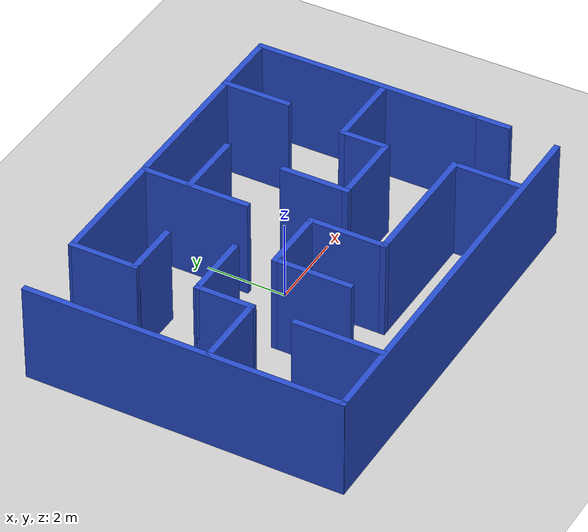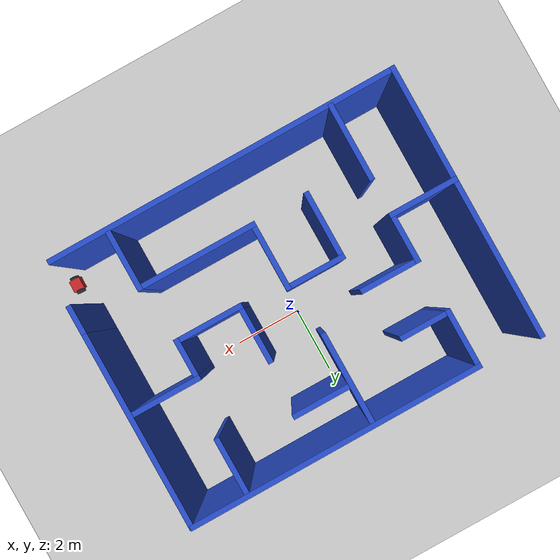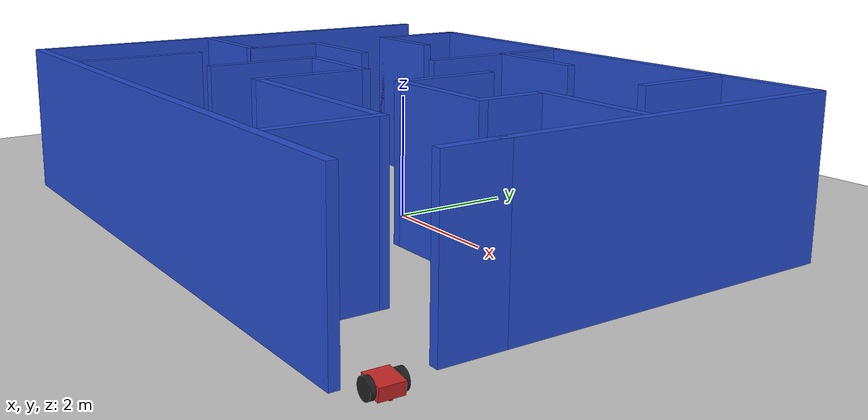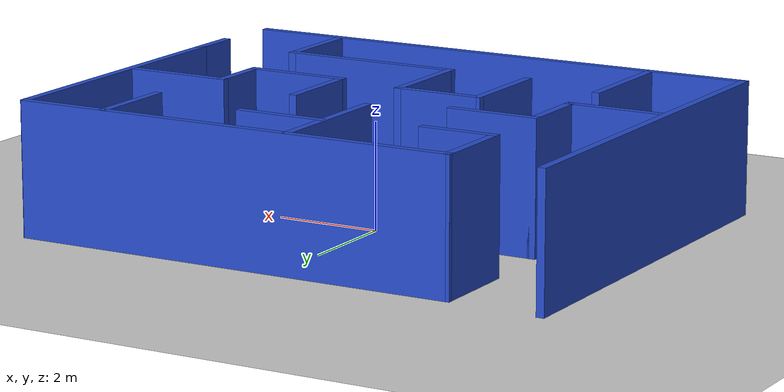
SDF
<sdf version="1.7">
 <world name="default">
  <light name="sun" type="directional">
   <pose>0 0 10 0 -0 0</pose>
   <diffuse>0.8 0.8 0.8 1</diffuse>
   <specular>0.2 0.2 0.2 1</specular>
   <attenuation>
    <range>1000</range>
    <constant>0.9</constant>
    <linear>0.01</linear>
    <quadratic>0.001</quadratic>
   </attenuation>
   <direction>-0.5 0.1 -0.9</direction>
   <spot><inner_angle>0</inner_angle><outer_angle>0</outer_angle><falloff>0</falloff></spot>
  </light>
  <model name="ground_plane">
   <static>1</static>
   <link name="link">
    <collision name="collision">
     <geometry><plane><normal>0 0 1</normal><size>100 100</size></plane></geometry>
     <surface>
      <contact><collide_bitmask>65535</collide_bitmask></contact>
      <friction><ode><mu>100</mu><mu2>50</mu2></ode></friction>
     </surface>
    </collision>
    <visual name="visual">
     <cast_shadows>0</cast_shadows>
     <geometry><plane><normal>0 0 1</normal><size>100 100</size></plane></geometry>
     <material>
      <script><uri>file://media/materials/scripts/gazebo.material</uri><name>Gazebo/Grey</name></script>
     </material>
    </visual>
   </link>
  </model>
  <gravity>0 0 -9.8</gravity>
  <magnetic_field>6e-06 2.3e-05 -4.2e-05</magnetic_field>
  <atmosphere type="adiabatic"/>
  <physics type="ode">
   <max_step_size>0.001</max_step_size>
   <real_time_factor>1</real_time_factor>
   <real_time_update_rate>1000</real_time_update_rate>
  </physics>
  <scene><ambient>0.4 0.4 0.4 1</ambient><background>0.7 0.7 0.7 1</background><shadows>0</shadows></scene>
  <spherical_coordinates>
   <surface_model>EARTH_WGS84</surface_model>
   <latitude_deg>0</latitude_deg>
   <longitude_deg>0</longitude_deg>
   <elevation>0</elevation>
   <heading_deg>0</heading_deg>
  </spherical_coordinates>
  <model name="maze1">
   <pose>-0.03824 -0.388117 0 0 -0 0</pose>
   <link name="Wall_10">
    <collision name="Wall_10_Collision">
     <geometry><box><size>8.60392 0.15 2.5</size></box></geometry>
     <pose>0 0 1.25 0 -0 0</pose>
    </collision>
    <visual name="Wall_10_Visual">
     <pose>0 0 1.25 0 -0 0</pose>
     <geometry><box><size>8.60392 0.15 2.5</size></box></geometry>
     <material>
      <script><uri>file://media/materials/scripts/gazebo.material</uri><name>Gazebo/Blue</name></script>
      <ambient>0 0 0 1</ambient>
     </material>
     <meta><layer>0</layer></meta>
    </visual>
    <pose>0.88793 3.86419 0 0 -0 -3.13769</pose>
   </link>
   <link name="Wall_14">
    <collision name="Wall_14_Collision">
     <geometry><box><size>5.75 0.15 2.5</size></box></geometry>
     <pose>0 0 1.25 0 -0 0</pose>
    </collision>
    <visual name="Wall_14_Visual">
     <pose>0 0 1.25 0 -0 0</pose>
     <geometry><box><size>5.75 0.15 2.5</size></box></geometry>
     <material>
      <script><uri>file://media/materials/scripts/gazebo.material</uri><name>Gazebo/Blue</name></script>
      <ambient>0 0 0 1</ambient>
     </material>
     <meta><layer>0</layer></meta>
    </visual>
    <pose>5.14103 1.05452 0 0 -0 -1.5708</pose>
   </link>
   <link name="Wall_16">
    <collision name="Wall_16_Collision">
     <geometry><box><size>1.75 0.15 2.5</size></box></geometry>
     <pose>0 0 1.25 0 -0 0</pose>
    </collision>
    <visual name="Wall_16_Visual">
     <pose>0 0 1.25 0 -0 0</pose>
     <geometry><box><size>1.75 0.15 2.5</size></box></geometry>
     <material>
      <script><uri>file://media/materials/scripts/gazebo.material</uri><name>Gazebo/Blue</name></script>
      <ambient>0 0 0 1</ambient>
     </material>
     <meta><layer>0</layer></meta>
    </visual>
    <pose>-3.339 3.04769 0 0 -0 -1.5708</pose>
   </link>
   <link name="Wall_17">
    <collision name="Wall_17_Collision">
     <geometry><box><size>1.5 0.15 2.5</size></box></geometry>
     <pose>0 0 1.25 0 -0 0</pose>
    </collision>
    <visual name="Wall_17_Visual">
     <pose>0 0 1.25 0 -0 0</pose>
     <geometry><box><size>1.5 0.15 2.5</size></box></geometry>
     <material>
      <script><uri>file://media/materials/scripts/gazebo.material</uri><name>Gazebo/Blue</name></script>
      <ambient>0 0 0 1</ambient>
     </material>
     <meta><layer>0</layer></meta>
    </visual>
    <pose>-2.664 2.24769 0 0 -0 0</pose>
   </link>
   <link name="Wall_19">
    <collision name="Wall_19_Collision">
     <geometry><box><size>2.25 0.15 2.5</size></box></geometry>
     <pose>0 0 1.25 0 -0 0</pose>
    </collision>
    <visual name="Wall_19_Visual">
     <pose>0 0 1.25 0 -0 0</pose>
     <geometry><box><size>2.25 0.15 2.5</size></box></geometry>
     <material>
      <script><uri>file://media/materials/scripts/gazebo.material</uri><name>Gazebo/Blue</name></script>
      <ambient>0 0 0 1</ambient>
     </material>
     <meta><layer>0</layer></meta>
    </visual>
    <pose>-3.27785 -2.80066 0 0 -0 1.5708</pose>
   </link>
   <link name="Wall_21">
    <collision name="Wall_21_Collision">
     <geometry><box><size>2 0.15 2.5</size></box></geometry>
     <pose>0 0 1.25 0 -0 0</pose>
    </collision>
    <visual name="Wall_21_Visual">
     <pose>0 0 1.25 0 -0 0</pose>
     <geometry><box><size>2 0.15 2.5</size></box></geometry>
     <material>
      <script><uri>file://media/materials/scripts/gazebo.material</uri><name>Gazebo/Blue</name></script>
      <ambient>0 0 0 1</ambient>
     </material>
     <meta><layer>0</layer></meta>
    </visual>
    <pose>-4.21089 -0.657958 0 0 -0 0</pose>
   </link>
   <link name="Wall_22">
    <collision name="Wall_22_Collision">
     <geometry><box><size>1.5 0.15 2.5</size></box></geometry>
     <pose>0 0 1.25 0 -0 0</pose>
    </collision>
    <visual name="Wall_22_Visual">
     <pose>0 0 1.25 0 -0 0</pose>
     <geometry><box><size>1.5 0.15 2.5</size></box></geometry>
     <material>
      <script><uri>file://media/materials/scripts/gazebo.material</uri><name>Gazebo/Blue</name></script>
      <ambient>0 0 0 1</ambient>
     </material>
     <meta><layer>0</layer></meta>
    </visual>
    <pose>-3.28589 0.017042 0 0 -0 1.5708</pose>
   </link>
   <link name="Wall_23">
    <collision name="Wall_23_Collision">
     <geometry><box><size>1.75 0.15 2.5</size></box></geometry>
     <pose>0 0 1.25 0 -0 0</pose>
    </collision>
    <visual name="Wall_23_Visual">
     <pose>0 0 1.25 0 -0 0</pose>
     <geometry><box><size>1.75 0.15 2.5</size></box></geometry>
     <material>
      <script><uri>file://media/materials/scripts/gazebo.material</uri><name>Gazebo/Blue</name></script>
      <ambient>0 0 0 1</ambient>
     </material>
     <meta><layer>0</layer></meta>
    </visual>
    <pose>-2.48589 0.692042 0 0 -0 0</pose>
   </link>
   <link name="Wall_25">
    <collision name="Wall_25_Collision">
     <geometry><box><size>1.75 0.15 2.5</size></box></geometry>
     <pose>0 0 1.25 0 -0 0</pose>
    </collision>
    <visual name="Wall_25_Visual">
     <pose>0 0 1.25 0 -0 0</pose>
     <geometry><box><size>1.75 0.15 2.5</size></box></geometry>
     <material>
      <script><uri>file://media/materials/scripts/gazebo.material</uri><name>Gazebo/Blue</name></script>
      <ambient>0 0 0 1</ambient>
     </material>
     <meta><layer>0</layer></meta>
    </visual>
    <pose>3.31692 -2.97215 0 0 -0 1.5708</pose>
   </link>
   <link name="Wall_26">
    <collision name="Wall_26_Collision">
     <geometry><box><size>3.5 0.15 2.5</size></box></geometry>
     <pose>0 0 1.25 0 -0 0</pose>
    </collision>
    <visual name="Wall_26_Visual">
     <pose>0 0 1.25 0 -0 0</pose>
     <geometry><box><size>3.5 0.15 2.5</size></box></geometry>
     <material>
      <script><uri>file://media/materials/scripts/gazebo.material</uri><name>Gazebo/Blue</name></script>
      <ambient>0 0 0 1</ambient>
     </material>
     <meta><layer>0</layer></meta>
    </visual>
    <pose>1.64192 -2.17215 0 0 -0 3.14159</pose>
   </link>
   <link name="Wall_27">
    <collision name="Wall_27_Collision">
     <geometry><box><size>2 0.15 2.5</size></box></geometry>
     <pose>0 0 1.25 0 -0 0</pose>
    </collision>
    <visual name="Wall_27_Visual">
     <pose>0 0 1.25 0 -0 0</pose>
     <geometry><box><size>2 0.15 2.5</size></box></geometry>
     <material>
      <script><uri>file://media/materials/scripts/gazebo.material</uri><name>Gazebo/Blue</name></script>
      <ambient>0 0 0 1</ambient>
     </material>
     <meta><layer>0</layer></meta>
    </visual>
    <pose>-0.033081 -1.24715 0 0 -0 1.5708</pose>
   </link>
   <link name="Wall_28">
    <collision name="Wall_28_Collision">
     <geometry><box><size>1.75 0.15 2.5</size></box></geometry>
     <pose>0 0 1.25 0 -0 0</pose>
    </collision>
    <visual name="Wall_28_Visual">
     <pose>0 0 1.25 0 -0 0</pose>
     <geometry><box><size>1.75 0.15 2.5</size></box></geometry>
     <material>
      <script><uri>file://media/materials/scripts/gazebo.material</uri><name>Gazebo/Blue</name></script>
      <ambient>0 0 0 1</ambient>
     </material>
     <meta><layer>0</layer></meta>
    </visual>
    <pose>-0.833081 -0.322153 0 0 -0 3.14159</pose>
   </link>
   <link name="Wall_29">
    <collision name="Wall_29_Collision">
     <geometry><box><size>2 0.15 2.5</size></box></geometry>
     <pose>0 0 1.25 0 -0 0</pose>
    </collision>
    <visual name="Wall_29_Visual">
     <pose>0 0 1.25 0 -0 0</pose>
     <geometry><box><size>2 0.15 2.5</size></box></geometry>
     <material>
      <script><uri>file://media/materials/scripts/gazebo.material</uri><name>Gazebo/Blue</name></script>
      <ambient>0 0 0 1</ambient>
     </material>
     <meta><layer>0</layer></meta>
    </visual>
    <pose>-1.63308 -1.24715 0 0 -0 -1.5708</pose>
   </link>
   <link name="Wall_31">
    <collision name="Wall_31_Collision">
     <geometry><box><size>1 0.15 2.5</size></box></geometry>
     <pose>0 0 1.25 0 -0 0</pose>
    </collision>
    <visual name="Wall_31_Visual">
     <pose>0 0 1.25 0 -0 0</pose>
     <geometry><box><size>1 0.15 2.5</size></box></geometry>
     <material>
      <script><uri>file://media/materials/scripts/gazebo.material</uri><name>Gazebo/Blue</name></script>
      <ambient>0 0 0 1</ambient>
     </material>
     <meta><layer>0</layer></meta>
    </visual>
    <pose>5.14103 -2.17048 0 0 -0 -1.5708</pose>
   </link>
   <link name="Wall_33">
    <collision name="Wall_33_Collision">
     <geometry><box><size>2.75 0.15 2.5</size></box></geometry>
     <pose>0 0 1.25 0 -0 0</pose>
    </collision>
    <visual name="Wall_33_Visual">
     <pose>0 0 1.25 0 -0 0</pose>
     <geometry><box><size>2.75 0.15 2.5</size></box></geometry>
     <material>
      <script><uri>file://media/materials/scripts/gazebo.material</uri><name>Gazebo/Blue</name></script>
      <ambient>0 0 0 1</ambient>
     </material>
     <meta><layer>0</layer></meta>
    </visual>
    <pose>-0.24216 2.51706 0 0 -0 -1.5708</pose>
   </link>
   <link name="Wall_35">
    <collision name="Wall_35_Collision">
     <geometry><box><size>1.75 0.15 2.5</size></box></geometry>
     <pose>0 0 1.25 0 -0 0</pose>
    </collision>
    <visual name="Wall_35_Visual">
     <pose>0 0 1.25 0 -0 0</pose>
     <geometry><box><size>1.75 0.15 2.5</size></box></geometry>
     <material>
      <script><uri>file://media/materials/scripts/gazebo.material</uri><name>Gazebo/Blue</name></script>
      <ambient>0 0 0 1</ambient>
     </material>
     <meta><layer>0</layer></meta>
    </visual>
    <pose>0.610179 2.66559 0 0 -0 0</pose>
   </link>
   <link name="Wall_37">
    <collision name="Wall_37_Collision">
     <geometry><box><size>1.75 0.15 2.5</size></box></geometry>
     <pose>0 0 1.25 0 -0 0</pose>
    </collision>
    <visual name="Wall_37_Visual">
     <pose>0 0 1.25 0 -0 0</pose>
     <geometry><box><size>1.75 0.15 2.5</size></box></geometry>
     <material>
      <script><uri>file://media/materials/scripts/gazebo.material</uri><name>Gazebo/Blue</name></script>
      <ambient>0 0 0 1</ambient>
     </material>
     <meta><layer>0</layer></meta>
    </visual>
    <pose>3.47394 3.04323 0 0 -0 -1.5708</pose>
   </link>
   <link name="Wall_39">
    <collision name="Wall_39_Collision">
     <geometry><box><size>2 0.15 2.5</size></box></geometry>
     <pose>0 0 1.25 0 -0 0</pose>
    </collision>
    <visual name="Wall_39_Visual">
     <pose>0 0 1.25 0 -0 0</pose>
     <geometry><box><size>2 0.15 2.5</size></box></geometry>
     <material>
      <script><uri>file://media/materials/scripts/gazebo.material</uri><name>Gazebo/Blue</name></script>
      <ambient>0 0 0 1</ambient>
     </material>
     <meta><layer>0</layer></meta>
    </visual>
    <pose>4.06678 0.598188 0 0 -0 3.14159</pose>
   </link>
   <link name="Wall_40">
    <collision name="Wall_40_Collision">
     <geometry><box><size>1.25 0.15 2.5</size></box></geometry>
     <pose>0 0 1.25 0 -0 0</pose>
    </collision>
    <visual name="Wall_40_Visual">
     <pose>0 0 1.25 0 -0 0</pose>
     <geometry><box><size>1.25 0.15 2.5</size></box></geometry>
     <material>
      <script><uri>file://media/materials/scripts/gazebo.material</uri><name>Gazebo/Blue</name></script>
      <ambient>0 0 0 1</ambient>
     </material>
     <meta><layer>0</layer></meta>
    </visual>
    <pose>3.14178 0.048188 0 0 -0 -1.5708</pose>
   </link>
   <link name="Wall_41">
    <collision name="Wall_41_Collision">
     <geometry><box><size>2 0.15 2.5</size></box></geometry>
     <pose>0 0 1.25 0 -0 0</pose>
    </collision>
    <visual name="Wall_41_Visual">
     <pose>0 0 1.25 0 -0 0</pose>
     <geometry><box><size>2 0.15 2.5</size></box></geometry>
     <material>
      <script><uri>file://media/materials/scripts/gazebo.material</uri><name>Gazebo/Blue</name></script>
      <ambient>0 0 0 1</ambient>
     </material>
     <meta><layer>0</layer></meta>
    </visual>
    <pose>2.21678 -0.501812 0 0 -0 3.14159</pose>
   </link>
   <link name="Wall_42">
    <collision name="Wall_42_Collision">
     <geometry><box><size>1.75 0.15 2.5</size></box></geometry>
     <pose>0 0 1.25 0 -0 0</pose>
    </collision>
    <visual name="Wall_42_Visual">
     <pose>0 0 1.25 0 -0 0</pose>
     <geometry><box><size>1.75 0.15 2.5</size></box></geometry>
     <material>
      <script><uri>file://media/materials/scripts/gazebo.material</uri><name>Gazebo/Blue</name></script>
      <ambient>0 0 0 1</ambient>
     </material>
     <meta><layer>0</layer></meta>
    </visual>
    <pose>1.29178 0.298188 0 0 -0 1.5708</pose>
   </link>
   <link name="Wall_6">
    <collision name="Wall_6_Collision">
     <geometry><box><size>8 0.15 2.5</size></box></geometry>
     <pose>0 0 1.25 0 -0 0</pose>
    </collision>
    <visual name="Wall_6_Visual">
     <pose>0 0 1.25 0 -0 0</pose>
     <geometry><box><size>8 0.15 2.5</size></box></geometry>
     <material>
      <script><uri>file://media/materials/scripts/gazebo.material</uri><name>Gazebo/Blue</name></script>
      <ambient>0 0 0 1</ambient>
     </material>
     <meta><layer>0</layer></meta>
    </visual>
    <pose>-5.14103 0.002517 0 0 -0 1.5708</pose>
   </link>
   <link name="Wall_8">
    <collision name="Wall_8_Collision">
     <geometry><box><size>10.2728 0.15 2.5</size></box></geometry>
     <pose>0 0 1.25 0 -0 0</pose>
    </collision>
    <visual name="Wall_8_Visual">
     <pose>0 0 1.25 0 -0 0</pose>
     <geometry><box><size>10.2728 0.15 2.5</size></box></geometry>
     <material>
      <script><uri>file://media/materials/scripts/gazebo.material</uri><name>Gazebo/Blue</name></script>
      <ambient>0 0 0 1</ambient>
     </material>
     <meta><layer>0</layer></meta>
    </visual>
    <pose>-0.075855 -3.91078 0 0 -0 -3.13833</pose>
   </link>
   <static>1</static>
  </model>
  <model name="camera2">
   <link name="camera_link">
    <inertial>
     <mass>1e-05</mass>
     <inertia><ixx>1e-05</ixx><ixy>0</ixy><ixz>0</ixz><iyy>1e-05</iyy><iyz>0</iyz><izz>1e-05</izz></inertia>
    </inertial>
    <sensor name="overhead_camera_sensor" type="camera">
     <always_on>1</always_on>
     <update_rate>30</update_rate>
     <visualize>1</visualize>
     <camera>
      <horizontal_fov>1.39626</horizontal_fov>
      <image><width>640</width><height>480</height><format>R8G8B8</format></image>
      <clip><near>0.1</near><far>100</far></clip>
     </camera>
     <plugin name="camera_controller" filename="libgazebo_ros_camera.so">
      <ros><namespace>/camera</namespace></ros>
      <camera_name>overhead_camera</camera_name>
      <frame_name>camera_link</frame_name>
      <image_topic_name>image_raw</image_topic_name>
      <info_topic_name>camera_info</info_topic_name>
     </plugin>
    </sensor>
   </link>
   <static>1</static>
   <pose>0.028527 5.9e-05 18.2359 1.56055 1.56055 3.14159</pose>
  </model>
  <model name="bot">
   <link name="base_link">
    <inertial>
     <pose>0.0175 0 -0.010938 0 -0 0</pose>
     <mass>2.8</mass>
     <inertia>
      <ixx>0.0654147</ixx>
      <ixy>0</ixy>
      <ixz>0.00375156</ixz>
      <iyy>0.111317</iyy>
      <iyz>0</iyz>
      <izz>0.0690725</izz>
     </inertia>
    </inertial>
    <collision name="base_link_collision"><geometry><box><size>0.35 0.35 0.175</size></box></geometry></collision>
    <collision name="base_link_fixed_joint_lump__caster_collision_1">
     <pose>0.14 0 -0.0875 0 -0 0</pose>
     <geometry><sphere><radius>0.035</radius></sphere></geometry>
    </collision>
    <visual name="base_link_visual">
     <geometry><box><size>0.35 0.35 0.175</size></box></geometry>
     <material>
      <script><name>Gazebo/Red</name><uri>file://media/materials/scripts/gazebo.material</uri></script>
     </material>
    </visual>
    <visual name="base_link_fixed_joint_lump__caster_visual_1">
     <pose>0.14 0 -0.0875 0 -0 0</pose>
     <geometry><sphere><radius>0.035</radius></sphere></geometry>
     <material>
      <script><name>Gazebo/Red</name><uri>file://media/materials/scripts/gazebo.material</uri></script>
     </material>
    </visual>
   </link>
   <joint name="joint_left_wheel" type="revolute">
    <pose relative_to="base_link">0 0.21 0 0 -0 0</pose>
    <parent>base_link</parent>
    <child>left_wheel</child>
    <axis>
     <xyz>0 1 0</xyz>
     <limit><lower>-1e+16</lower><upper>1e+16</upper></limit>
     <dynamics><spring_reference>0</spring_reference><spring_stiffness>0</spring_stiffness></dynamics>
    </axis>
   </joint>
   <link name="left_wheel">
    <pose relative_to="joint_left_wheel">0 0 0 0 -0 0</pose>
    <inertial>
     <mass>0.35</mass>
     <inertia><ixx>0.0049</ixx><ixy>0</ixy><ixz>0</ixz><iyy>0.00245</iyy><iyz>0</iyz><izz>0.00245</izz></inertia>
    </inertial>
    <collision name="left_wheel_collision">
     <pose>0 0 0 1.57079 -0 0</pose>
     <geometry><cylinder><length>0.07</length><radius>0.14</radius></cylinder></geometry>
    </collision>
    <visual name="left_wheel_visual">
     <pose>0 0 0 1.57079 -0 0</pose>
     <geometry><cylinder><length>0.07</length><radius>0.14</radius></cylinder></geometry>
     <material>
      <script><name>Gazebo/Black</name><uri>file://media/materials/scripts/gazebo.material</uri></script>
     </material>
    </visual>
   </link>
   <joint name="joint_right_wheel" type="revolute">
    <pose relative_to="base_link">0 -0.21 0 0 -0 0</pose>
    <parent>base_link</parent>
    <child>right_wheel</child>
    <axis>
     <xyz>0 1 0</xyz>
     <limit><lower>-1e+16</lower><upper>1e+16</upper></limit>
     <dynamics><spring_reference>0</spring_reference><spring_stiffness>0</spring_stiffness></dynamics>
    </axis>
   </joint>
   <link name="right_wheel">
    <pose relative_to="joint_right_wheel">0 0 0 0 -0 0</pose>
    <inertial>
     <mass>0.35</mass>
     <inertia><ixx>0.0049</ixx><ixy>0</ixy><ixz>0</ixz><iyy>0.00245</iyy><iyz>0</iyz><izz>0.00245</izz></inertia>
    </inertial>
    <collision name="right_wheel_collision">
     <pose>0 0 0 1.57079 -0 0</pose>
     <geometry><cylinder><length>0.07</length><radius>0.14</radius></cylinder></geometry>
    </collision>
    <visual name="right_wheel_visual">
     <pose>0 0 0 1.57079 -0 0</pose>
     <geometry><cylinder><length>0.07</length><radius>0.14</radius></cylinder></geometry>
     <material>
      <script><name>Gazebo/Black</name><uri>file://media/materials/scripts/gazebo.material</uri></script>
     </material>
    </visual>
   </link>
   <plugin name="gazebo_base_controller" filename="libgazebo_ros_diff_drive.so">
    <odometry_frame>odom</odometry_frame>
    <commandTopic>cmd_vel</commandTopic>
    <publish_odom>1</publish_odom>
    <publish_odom_tf>1</publish_odom_tf>
    <update_rate>15.0</update_rate>
    <left_joint>joint_left_wheel</left_joint>
    <right_joint>joint_right_wheel</right_joint>
    <wheel_separation>0.42</wheel_separation>
    <wheel_diameter>0.28</wheel_diameter>
    <max_wheel_acceleration>0.49</max_wheel_acceleration>
    <robotBaseFrame>base</robotBaseFrame>
   </plugin>
   <frame name="joint_caster" attached_to="base_link"><pose>0.14 0 -0.0875 0 -0 0</pose></frame>
   <frame name="caster" attached_to="joint_caster"/>
   <pose>5.38551 -3.90048 0.14 1e-06 0.130702 -0.016556</pose>
  </model>
 </world>
</sdf>
